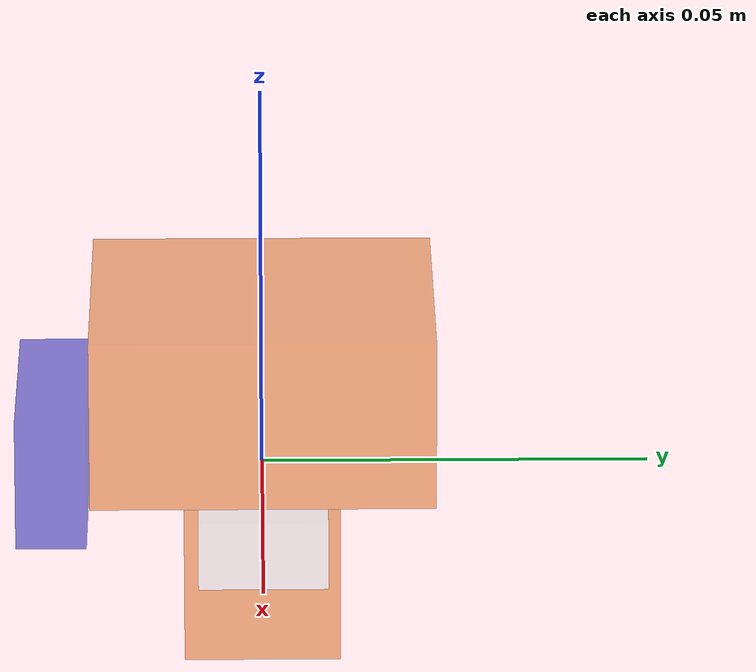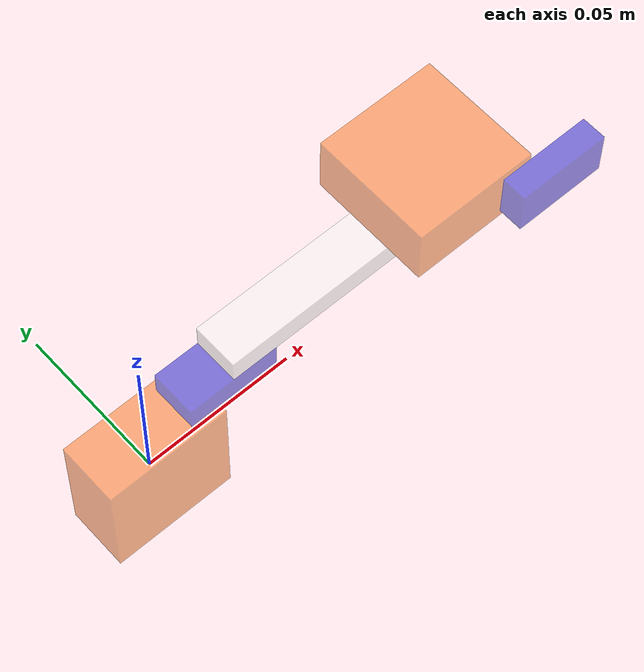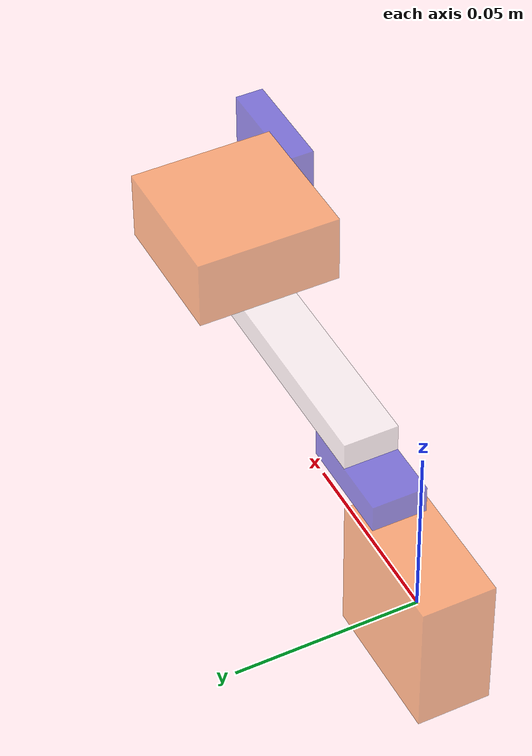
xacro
<?xml version="1.0"?>
<robot xmlns:xacro="http://www.ros.org/wiki/xacro" name="legolas_robot">

    <xacro:include filename="$(find biped_core)/description/servo.urdf.xacro" />

    <xacro:include filename="$(find biped_core)/description/materials.xacro" />

    <xacro:include filename="$(find biped_core)/description/leg.xacro" />

    <link name="base_link"/>

    <xacro:position_servo prefix="servo" parent="base_link">
        <origin xyz="0 0 0" rpy="0 0 0" />
    </xacro:position_servo>

    <xacro:leg prefix="right_leg" parent="servo_arm_connection_link">
        <origin xyz="0 0 0" rpy="0 0 0" />
    </xacro:leg>

    <xacro:position_servo prefix="servo2" parent="right_leg_connection_link">
        <origin xyz="0 0 0.01" rpy="1.57 0 0" />
    </xacro:position_servo>

</robot>

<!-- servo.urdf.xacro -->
<!-- Describing a single and position servo motor -->

<robot xmlns:xacro="http://www.ros.org/wiki/xacro">
    <xacro:macro name="position_servo" params="prefix parent *origin">

        <!-- Joint to Parent -->
        <joint name="${prefix}_base_joint" type="fixed">
            <parent link="${parent}"/>
            <child link="${prefix}_link" />
            <xacro:insert_block name="origin" />
        </joint>

        <!-- Servo Base -->
        <link name="${prefix}_link">
            <visual>
                <origin xyz="0 0 0" rpy="0 0 0"/>
                <geometry>
                    <box size="0.04 0.02 0.04"/>
                </geometry>
                <material name="orange"/>
            </visual>
            <collision>
                <origin xyz="0 0 0.0" rpy="0 0 0"/>
                <geometry>
                    <box size="0.04 0.02 0.04"/>
                </geometry>
            </collision>
        </link>

        <joint name="${prefix}_joint" type="revolute">
            <parent link="${prefix}_link"/>
            <child link="${prefix}_arm_link"/>
            <origin xyz="0.01 0 0.02" rpy="0 0 0"/>
            <axis xyz="0 0 1"/>
            <limit lower="-1.57" upper="2.3" effort="100" velocity="1.0"/>
        </joint>

        <!-- Servo Arm -->
        <link name="${prefix}_arm_link">
            <collision>
                <origin xyz="0.015 0 0.004" rpy="0 0 0"/>
                <geometry>
                    <box size="0.035 0.015 0.008"/>
                </geometry>
            </collision>
            <visual>
                <origin xyz="0.015 0 0.004" rpy="0 0 0"/>
                <geometry>
                    <box size="0.03 0.015 0.008"/>
                </geometry>
                <material name="blue"/>
            </visual>
        </link>

        <!-- Servo Arm Connection Joint-->
        <joint name="${prefix}_arm_connection_joint" type="fixed">
            <parent link="${prefix}_arm_link"/>
            <child link="${prefix}_arm_connection_link"/>
            <origin xyz="0.015 0 0.008" rpy="0 0 0"/>
            <axis xyz="0 0 1"/>
            <limit lower="-1.57" upper="2.3" effort="100" velocity="1.0"/>
        </joint>

        <!-- Servo Arm Connection Link-->
        <link name="${prefix}_arm_connection_link"/>

    </xacro:macro>
</robot>

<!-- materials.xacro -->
<!-- Copied from https://github.com/ros-controls/ros2_control_demos -->
<!--
Copied from ROS1 example:
https://github.com/ros-simulation/gazebo_ros_demos/blob/kinetic-devel/rrbot_description/urdf/materials.xacro
-->
<robot>

  <material name="black">
    <color rgba="0.0 0.0 0.0 1.0"/>
  </material>

  <material name="blue">
    <color rgba="0.0 0.0 0.8 0.5"/>
  </material>

  <material name="green">
    <color rgba="0.0 0.8 0.0 1.0"/>
  </material>

  <material name="grey">
    <color rgba="0.2 0.2 0.2 1.0"/>
  </material>

  <material name="orange">
    <color rgba="${255/255} ${108/255} ${10/255} 0.5"/>
  </material>

  <material name="brown">
    <color rgba="${222/255} ${207/255} ${195/255} 1.0"/>
  </material>

  <material name="red">
    <color rgba="0.8 0.0 0.0 1.0"/>
  </material>

  <material name="white">
    <color rgba="1.0 1.0 1.0 0.5"/>
  </material>

</robot>

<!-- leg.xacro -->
<!-- Describing a single and position servo motor -->

<robot xmlns:xacro="http://www.ros.org/wiki/xacro">
    <xacro:macro name="leg" params="prefix parent *origin">

        <!-- Joint to Parent -->
        <joint name="${prefix}_base_joint" type="fixed">
            <parent link="${parent}"/>
            <child link="${prefix}_link" />
            <xacro:insert_block name="origin" />
        </joint>

        <!-- Leg Link -->
        <link name="${prefix}_link">
            <collision>
                <origin xyz="0.05 0.015 0.008" rpy="0 0 0"/>
                <geometry>
                    <box size="0.05 0.015 0.008"/>
                </geometry>
            </collision>
            <visual>
                <origin xyz="0.05 0 0.004" rpy="0 0 0"/>
                <geometry>
                    <box size="0.1 0.015 0.008"/>
                </geometry>
                <material name="white"/>
            </visual>
        </link>

        <!-- Leg Joint -->
        <joint name="${prefix}_joint" type="fixed">
            <parent link="${prefix}_link"/>
            <child link="${prefix}_connection_link"/>
            <origin xyz="0.075 0 0.008" rpy="0 0 0"/>
            <axis xyz="0 0 1"/>
            <limit lower="-1.57" upper="2.3" effort="100" velocity="1.0"/>
        </joint>

        <!-- Leg Connection Link -->
        <link name="${prefix}_connection_link"/>

    </xacro:macro>
</robot>
